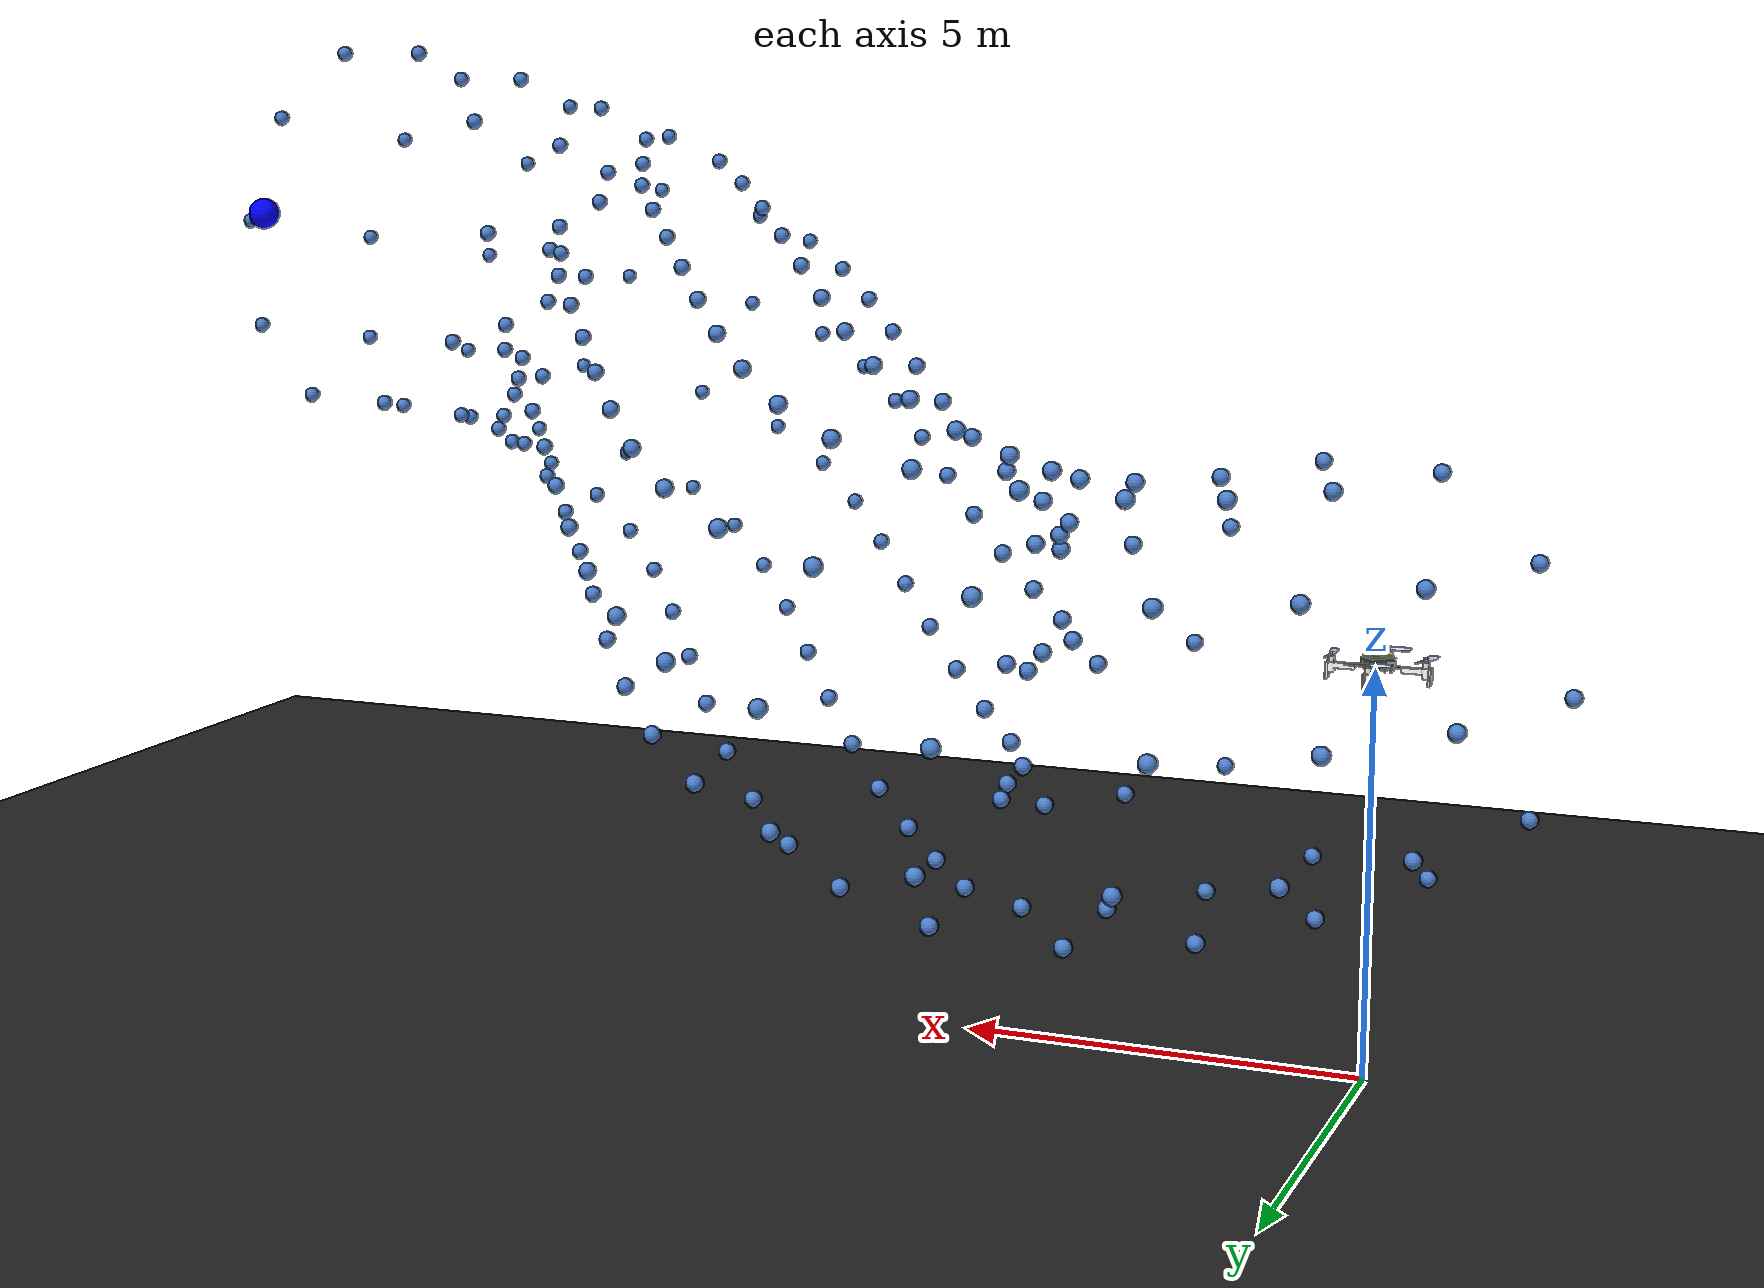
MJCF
<?xml version="1.0" ?>
<mujoco model="CF2 scene">

  <include file="cf2.xml"/>

  <statistic center="0 0 0.1" extent="0.2" meansize=".05"/>

  <visual>

    <rgba haze="0.15 0.25 0.35 0"/>

    <global azimuth="-20" elevation="-20" ellipsoidinertia="true"/>

    <map zfar="1000"/>

  </visual>

  <asset>

    <texture type="skybox" builtin="gradient" rgb1="0.3 0.5 0.7" rgb2="0 0 0" width="512" height="3072"/>

    <texture type="2d" name="groundplane" builtin="checker" mark="edge" rgb1="0.1 0.1 0.1" rgb2="0.2 0.2 0.2" markrgb="0.8 0.8 0.8" width="300" height="300"/>

    <material name="groundplane" texture="groundplane" texuniform="true" texrepeat="5 5" reflectance="0.1"/>

  </asset>

  <worldbody>

    <light diffuse="1 1 1" ambient="1 1 1" pos="0 0 100" dir="0 0 -1" directional="false"/>

    <geom name="floor" size="0 0 0.05" type="plane" material="groundplane"/>

    <site name="x_axis" size="0.005" type="cylinder" fromto="0 0 0 1 0 0" rgba="1 0 0 1"/>

    <site name="y_axis" size="0.005" type="cylinder" fromto="0 0 0 0 1 0" rgba="0 1 0 1"/>

    <site name="z_axis" size="0.005" type="cylinder" fromto="0 0 0 0 0 1" rgba="0 0 1 1"/>

    <site name="target" size="0.2" type="sphere" pos="15 0 10" rgba="0 0 1 1"/>

    <camera name="cam_aux" pos="-3.429 -18.876 13.649" xyaxes="0.874 -0.486 -0.000 0.179 0.321 0.930"/>

    <body name="sphere_0_0" pos="-2.37909 0.76807 5.00000">
      <geom type="sphere" size="0.1" rgba="0.3 0.5 0.8 1"/>
    </body>
    <body name="sphere_0_1" pos="-1.92556 0.61880 6.46946">
      <geom type="sphere" size="0.1" rgba="0.3 0.5 0.8 1"/>
    </body>
    <body name="sphere_0_2" pos="-0.73653 0.23316 7.37764">
      <geom type="sphere" size="0.1" rgba="0.3 0.5 0.8 1"/>
    </body>
    <body name="sphere_0_3" pos="0.73383 -0.24153 7.37764">
      <geom type="sphere" size="0.1" rgba="0.3 0.5 0.8 1"/>
    </body>
    <body name="sphere_0_4" pos="1.92389 -0.62397 6.46946">
      <geom type="sphere" size="0.1" rgba="0.3 0.5 0.8 1"/>
    </body>
    <body name="sphere_0_5" pos="2.37909 -0.76807 5.00000">
      <geom type="sphere" size="0.1" rgba="0.3 0.5 0.8 1"/>
    </body>
    <body name="sphere_0_6" pos="1.92556 -0.61880 3.53054">
      <geom type="sphere" size="0.1" rgba="0.3 0.5 0.8 1"/>
    </body>
    <body name="sphere_0_7" pos="0.73653 -0.23316 2.62236">
      <geom type="sphere" size="0.1" rgba="0.3 0.5 0.8 1"/>
    </body>
    <body name="sphere_0_8" pos="-0.73383 0.24153 2.62236">
      <geom type="sphere" size="0.1" rgba="0.3 0.5 0.8 1"/>
    </body>
    <body name="sphere_0_9" pos="-1.92389 0.62397 3.53054">
      <geom type="sphere" size="0.1" rgba="0.3 0.5 0.8 1"/>
    </body>
    <body name="sphere_1_0" pos="-1.51770 3.08912 5.02244">
      <geom type="sphere" size="0.1" rgba="0.3 0.5 0.8 1"/>
    </body>
    <body name="sphere_1_1" pos="-1.09582 2.86291 6.49150">
      <geom type="sphere" size="0.1" rgba="0.3 0.5 0.8 1"/>
    </body>
    <body name="sphere_1_2" pos="0.03677 2.33357 7.39943">
      <geom type="sphere" size="0.1" rgba="0.3 0.5 0.8 1"/>
    </body>
    <body name="sphere_1_3" pos="1.44745 1.70329 7.39943">
      <geom type="sphere" size="0.1" rgba="0.3 0.5 0.8 1"/>
    </body>
    <body name="sphere_1_4" pos="2.59740 1.21281 6.49150">
      <geom type="sphere" size="0.1" rgba="0.3 0.5 0.8 1"/>
    </body>
    <body name="sphere_1_5" pos="3.04738 1.04948 5.02244">
      <geom type="sphere" size="0.1" rgba="0.3 0.5 0.8 1"/>
    </body>
    <body name="sphere_1_6" pos="2.62550 1.27569 3.55338">
      <geom type="sphere" size="0.1" rgba="0.3 0.5 0.8 1"/>
    </body>
    <body name="sphere_1_7" pos="1.49291 1.80503 2.64545">
      <geom type="sphere" size="0.1" rgba="0.3 0.5 0.8 1"/>
    </body>
    <body name="sphere_1_8" pos="0.08223 2.43532 2.64545">
      <geom type="sphere" size="0.1" rgba="0.3 0.5 0.8 1"/>
    </body>
    <body name="sphere_1_9" pos="-1.06772 2.92579 3.55338">
      <geom type="sphere" size="0.1" rgba="0.3 0.5 0.8 1"/>
    </body>
    <body name="sphere_2_0" pos="-0.49600 4.92519 5.08770">
      <geom type="sphere" size="0.1" rgba="0.3 0.5 0.8 1"/>
    </body>
    <body name="sphere_2_1" pos="-0.16034 4.57320 6.55424">
      <geom type="sphere" size="0.1" rgba="0.3 0.5 0.8 1"/>
    </body>
    <body name="sphere_2_2" pos="0.82581 3.80294 7.46060">
      <geom type="sphere" size="0.1" rgba="0.3 0.5 0.8 1"/>
    </body>
    <body name="sphere_2_3" pos="2.08578 2.90864 7.46060">
      <geom type="sphere" size="0.1" rgba="0.3 0.5 0.8 1"/>
    </body>
    <body name="sphere_2_4" pos="3.13830 2.23189 6.55424">
      <geom type="sphere" size="0.1" rgba="0.3 0.5 0.8 1"/>
    </body>
    <body name="sphere_2_5" pos="3.58134 2.03118 5.08770">
      <geom type="sphere" size="0.1" rgba="0.3 0.5 0.8 1"/>
    </body>
    <body name="sphere_2_6" pos="3.24568 2.38317 3.62117">
      <geom type="sphere" size="0.1" rgba="0.3 0.5 0.8 1"/>
    </body>
    <body name="sphere_2_7" pos="2.25952 3.15343 2.71481">
      <geom type="sphere" size="0.1" rgba="0.3 0.5 0.8 1"/>
    </body>
    <body name="sphere_2_8" pos="0.99956 4.04773 2.71481">
      <geom type="sphere" size="0.1" rgba="0.3 0.5 0.8 1"/>
    </body>
    <body name="sphere_2_9" pos="-0.05296 4.72448 3.62117">
      <geom type="sphere" size="0.1" rgba="0.3 0.5 0.8 1"/>
    </body>
    <body name="sphere_3_0" pos="0.89808 6.34934 5.19270">
      <geom type="sphere" size="0.1" rgba="0.3 0.5 0.8 1"/>
    </body>
    <body name="sphere_3_1" pos="1.01899 5.85123 6.65028">
      <geom type="sphere" size="0.1" rgba="0.3 0.5 0.8 1"/>
    </body>
    <body name="sphere_3_2" pos="1.64111 4.76093 7.55112">
      <geom type="sphere" size="0.1" rgba="0.3 0.5 0.8 1"/>
    </body>
    <body name="sphere_3_3" pos="2.52681 3.49490 7.55112">
      <geom type="sphere" size="0.1" rgba="0.3 0.5 0.8 1"/>
    </body>
    <body name="sphere_3_4" pos="3.33777 2.53672 6.65028">
      <geom type="sphere" size="0.1" rgba="0.3 0.5 0.8 1"/>
    </body>
    <body name="sphere_3_5" pos="3.76425 2.25238 5.19270">
      <geom type="sphere" size="0.1" rgba="0.3 0.5 0.8 1"/>
    </body>
    <body name="sphere_3_6" pos="3.64333 2.75049 3.73511">
      <geom type="sphere" size="0.1" rgba="0.3 0.5 0.8 1"/>
    </body>
    <body name="sphere_3_7" pos="3.02121 3.84079 2.83428">
      <geom type="sphere" size="0.1" rgba="0.3 0.5 0.8 1"/>
    </body>
    <body name="sphere_3_8" pos="2.13552 5.10682 2.83428">
      <geom type="sphere" size="0.1" rgba="0.3 0.5 0.8 1"/>
    </body>
    <body name="sphere_3_9" pos="1.32455 6.06500 3.73511">
      <geom type="sphere" size="0.1" rgba="0.3 0.5 0.8 1"/>
    </body>
    <body name="sphere_4_0" pos="2.87965 7.09916 5.33433">
      <geom type="sphere" size="0.1" rgba="0.3 0.5 0.8 1"/>
    </body>
    <body name="sphere_4_1" pos="2.64365 6.59577 6.77592">
      <geom type="sphere" size="0.1" rgba="0.3 0.5 0.8 1"/>
    </body>
    <body name="sphere_4_2" pos="2.59266 5.33446 7.66688">
      <geom type="sphere" size="0.1" rgba="0.3 0.5 0.8 1"/>
    </body>
    <body name="sphere_4_3" pos="2.74615 3.79702 7.66688">
      <geom type="sphere" size="0.1" rgba="0.3 0.5 0.8 1"/>
    </body>
    <body name="sphere_4_4" pos="3.04550 2.57069 6.77592">
      <geom type="sphere" size="0.1" rgba="0.3 0.5 0.8 1"/>
    </body>
    <body name="sphere_4_5" pos="3.37636 2.12389 5.33433">
      <geom type="sphere" size="0.1" rgba="0.3 0.5 0.8 1"/>
    </body>
    <body name="sphere_4_6" pos="3.61236 2.62729 3.89274">
      <geom type="sphere" size="0.1" rgba="0.3 0.5 0.8 1"/>
    </body>
    <body name="sphere_4_7" pos="3.66335 3.88859 3.00178">
      <geom type="sphere" size="0.1" rgba="0.3 0.5 0.8 1"/>
    </body>
    <body name="sphere_4_8" pos="3.50986 5.42603 3.00178">
      <geom type="sphere" size="0.1" rgba="0.3 0.5 0.8 1"/>
    </body>
    <body name="sphere_4_9" pos="3.21051 6.65236 3.89274">
      <geom type="sphere" size="0.1" rgba="0.3 0.5 0.8 1"/>
    </body>
    <body name="sphere_5_0" pos="4.85629 6.80680 5.50951">
      <geom type="sphere" size="0.1" rgba="0.3 0.5 0.8 1"/>
    </body>
    <body name="sphere_5_1" pos="4.38591 6.48027 6.94457">
      <geom type="sphere" size="0.1" rgba="0.3 0.5 0.8 1"/>
    </body>
    <body name="sphere_5_2" pos="3.74171 5.39138 7.83149">
      <geom type="sphere" size="0.1" rgba="0.3 0.5 0.8 1"/>
    </body>
    <body name="sphere_5_3" pos="3.16977 3.95605 7.83149">
      <geom type="sphere" size="0.1" rgba="0.3 0.5 0.8 1"/>
    </body>
    <body name="sphere_5_4" pos="2.88855 2.72253 6.94457">
      <geom type="sphere" size="0.1" rgba="0.3 0.5 0.8 1"/>
    </body>
    <body name="sphere_5_5" pos="3.00546 2.16198 5.50951">
      <geom type="sphere" size="0.1" rgba="0.3 0.5 0.8 1"/>
    </body>
    <body name="sphere_5_6" pos="3.47585 2.48851 4.07445">
      <geom type="sphere" size="0.1" rgba="0.3 0.5 0.8 1"/>
    </body>
    <body name="sphere_5_7" pos="4.12004 3.57740 3.18753">
      <geom type="sphere" size="0.1" rgba="0.3 0.5 0.8 1"/>
    </body>
    <body name="sphere_5_8" pos="4.69198 5.01273 3.18753">
      <geom type="sphere" size="0.1" rgba="0.3 0.5 0.8 1"/>
    </body>
    <body name="sphere_5_9" pos="4.97320 6.24625 4.07445">
      <geom type="sphere" size="0.1" rgba="0.3 0.5 0.8 1"/>
    </body>
    <body name="sphere_6_0" pos="6.30094 5.94443 5.71514">
      <geom type="sphere" size="0.1" rgba="0.3 0.5 0.8 1"/>
    </body>
    <body name="sphere_6_1" pos="5.76415 5.76277 7.15255">
      <geom type="sphere" size="0.1" rgba="0.3 0.5 0.8 1"/>
    </body>
    <body name="sphere_6_2" pos="4.83519 4.90537 8.04091">
      <geom type="sphere" size="0.1" rgba="0.3 0.5 0.8 1"/>
    </body>
    <body name="sphere_6_3" pos="3.86890 3.69973 8.04091">
      <geom type="sphere" size="0.1" rgba="0.3 0.5 0.8 1"/>
    </body>
    <body name="sphere_6_4" pos="3.23437 2.60635 7.15255">
      <geom type="sphere" size="0.1" rgba="0.3 0.5 0.8 1"/>
    </body>
    <body name="sphere_6_5" pos="3.17397 2.04288 5.71514">
      <geom type="sphere" size="0.1" rgba="0.3 0.5 0.8 1"/>
    </body>
    <body name="sphere_6_6" pos="3.71077 2.22454 4.27773">
      <geom type="sphere" size="0.1" rgba="0.3 0.5 0.8 1"/>
    </body>
    <body name="sphere_6_7" pos="4.63972 3.08194 3.38937">
      <geom type="sphere" size="0.1" rgba="0.3 0.5 0.8 1"/>
    </body>
    <body name="sphere_6_8" pos="5.60601 4.28758 3.38937">
      <geom type="sphere" size="0.1" rgba="0.3 0.5 0.8 1"/>
    </body>
    <body name="sphere_6_9" pos="6.24054 5.38096 4.27773">
      <geom type="sphere" size="0.1" rgba="0.3 0.5 0.8 1"/>
    </body>
    <body name="sphere_7_0" pos="7.40547 4.88393 5.94814">
      <geom type="sphere" size="0.1" rgba="0.3 0.5 0.8 1"/>
    </body>
    <body name="sphere_7_1" pos="6.85477 4.78256 7.38819">
      <geom type="sphere" size="0.1" rgba="0.3 0.5 0.8 1"/>
    </body>
    <body name="sphere_7_2" pos="5.80395 4.08188 8.27818">
      <geom type="sphere" size="0.1" rgba="0.3 0.5 0.8 1"/>
    </body>
    <body name="sphere_7_3" pos="4.65438 3.04951 8.27818">
      <geom type="sphere" size="0.1" rgba="0.3 0.5 0.8 1"/>
    </body>
    <body name="sphere_7_4" pos="3.84516 2.07980 7.38819">
      <geom type="sphere" size="0.1" rgba="0.3 0.5 0.8 1"/>
    </body>
    <body name="sphere_7_5" pos="3.68539 1.54312 5.94814">
      <geom type="sphere" size="0.1" rgba="0.3 0.5 0.8 1"/>
    </body>
    <body name="sphere_7_6" pos="4.23609 1.64449 4.50809">
      <geom type="sphere" size="0.1" rgba="0.3 0.5 0.8 1"/>
    </body>
    <body name="sphere_7_7" pos="5.28691 2.34517 3.61809">
      <geom type="sphere" size="0.1" rgba="0.3 0.5 0.8 1"/>
    </body>
    <body name="sphere_7_8" pos="6.43648 3.37753 3.61809">
      <geom type="sphere" size="0.1" rgba="0.3 0.5 0.8 1"/>
    </body>
    <body name="sphere_7_9" pos="7.24570 4.34725 4.50809">
      <geom type="sphere" size="0.1" rgba="0.3 0.5 0.8 1"/>
    </body>
    <body name="sphere_8_0" pos="8.35468 3.71526 6.20540">
      <geom type="sphere" size="0.1" rgba="0.3 0.5 0.8 1"/>
    </body>
    <body name="sphere_8_1" pos="7.80020 3.65951 7.64649">
      <geom type="sphere" size="0.1" rgba="0.3 0.5 0.8 1"/>
    </body>
    <body name="sphere_8_2" pos="6.69274 3.05323 8.53713">
      <geom type="sphere" size="0.1" rgba="0.3 0.5 0.8 1"/>
    </body>
    <body name="sphere_8_3" pos="5.45531 2.12800 8.53713">
      <geom type="sphere" size="0.1" rgba="0.3 0.5 0.8 1"/>
    </body>
    <body name="sphere_8_4" pos="4.56056 1.23722 7.64649">
      <geom type="sphere" size="0.1" rgba="0.3 0.5 0.8 1"/>
    </body>
    <body name="sphere_8_5" pos="4.35027 0.72115 6.20540">
      <geom type="sphere" size="0.1" rgba="0.3 0.5 0.8 1"/>
    </body>
    <body name="sphere_8_6" pos="4.90475 0.77690 4.76432">
      <geom type="sphere" size="0.1" rgba="0.3 0.5 0.8 1"/>
    </body>
    <body name="sphere_8_7" pos="6.01221 1.38318 3.87367">
      <geom type="sphere" size="0.1" rgba="0.3 0.5 0.8 1"/>
    </body>
    <body name="sphere_8_8" pos="7.24964 2.30841 3.87367">
      <geom type="sphere" size="0.1" rgba="0.3 0.5 0.8 1"/>
    </body>
    <body name="sphere_8_9" pos="8.14439 3.19918 4.76432">
      <geom type="sphere" size="0.1" rgba="0.3 0.5 0.8 1"/>
    </body>
    <body name="sphere_9_0" pos="9.22528 2.48517 6.48385">
      <geom type="sphere" size="0.1" rgba="0.3 0.5 0.8 1"/>
    </body>
    <body name="sphere_9_1" pos="8.66705 2.45763 7.92430">
      <geom type="sphere" size="0.1" rgba="0.3 0.5 0.8 1"/>
    </body>
    <body name="sphere_9_2" pos="7.53174 1.90461 8.81455">
      <geom type="sphere" size="0.1" rgba="0.3 0.5 0.8 1"/>
    </body>
    <body name="sphere_9_3" pos="6.25303 1.03734 8.81455">
      <geom type="sphere" size="0.1" rgba="0.3 0.5 0.8 1"/>
    </body>
    <body name="sphere_9_4" pos="5.31932 0.18708 7.92430">
      <geom type="sphere" size="0.1" rgba="0.3 0.5 0.8 1"/>
    </body>
    <body name="sphere_9_5" pos="5.08726 -0.32139 6.48385">
      <geom type="sphere" size="0.1" rgba="0.3 0.5 0.8 1"/>
    </body>
    <body name="sphere_9_6" pos="5.64550 -0.29385 5.04340">
      <geom type="sphere" size="0.1" rgba="0.3 0.5 0.8 1"/>
    </body>
    <body name="sphere_9_7" pos="6.78080 0.25918 4.15315">
      <geom type="sphere" size="0.1" rgba="0.3 0.5 0.8 1"/>
    </body>
    <body name="sphere_9_8" pos="8.05952 1.12645 4.15315">
      <geom type="sphere" size="0.1" rgba="0.3 0.5 0.8 1"/>
    </body>
    <body name="sphere_9_9" pos="8.99323 1.97671 5.04340">
      <geom type="sphere" size="0.1" rgba="0.3 0.5 0.8 1"/>
    </body>
    <body name="sphere_10_0" pos="10.04480 1.25017 6.78038">
      <geom type="sphere" size="0.1" rgba="0.3 0.5 0.8 1"/>
    </body>
    <body name="sphere_10_1" pos="9.47977 1.24101 8.21841">
      <geom type="sphere" size="0.1" rgba="0.3 0.5 0.8 1"/>
    </body>
    <body name="sphere_10_2" pos="8.33214 0.71154 9.10717">
      <geom type="sphere" size="0.1" rgba="0.3 0.5 0.8 1"/>
    </body>
    <body name="sphere_10_3" pos="7.04027 -0.13602 9.10717">
      <geom type="sphere" size="0.1" rgba="0.3 0.5 0.8 1"/>
    </body>
    <body name="sphere_10_4" pos="6.09760 -0.97791 8.21841">
      <geom type="sphere" size="0.1" rgba="0.3 0.5 0.8 1"/>
    </body>
    <body name="sphere_10_5" pos="5.86421 -1.49257 6.78038">
      <geom type="sphere" size="0.1" rgba="0.3 0.5 0.8 1"/>
    </body>
    <body name="sphere_10_6" pos="6.42924 -1.48341 5.34234">
      <geom type="sphere" size="0.1" rgba="0.3 0.5 0.8 1"/>
    </body>
    <body name="sphere_10_7" pos="7.57687 -0.95394 4.45359">
      <geom type="sphere" size="0.1" rgba="0.3 0.5 0.8 1"/>
    </body>
    <body name="sphere_10_8" pos="8.86875 -0.10638 4.45359">
      <geom type="sphere" size="0.1" rgba="0.3 0.5 0.8 1"/>
    </body>
    <body name="sphere_10_9" pos="9.81141 0.73551 5.34234">
      <geom type="sphere" size="0.1" rgba="0.3 0.5 0.8 1"/>
    </body>
    <body name="sphere_11_0" pos="10.81856 0.07946 7.09191">
      <geom type="sphere" size="0.1" rgba="0.3 0.5 0.8 1"/>
    </body>
    <body name="sphere_11_1" pos="10.24155 0.08155 8.52520">
      <geom type="sphere" size="0.1" rgba="0.3 0.5 0.8 1"/>
    </body>
    <body name="sphere_11_2" pos="9.09285 -0.45051 9.41103">
      <geom type="sphere" size="0.1" rgba="0.3 0.5 0.8 1"/>
    </body>
    <body name="sphere_11_3" pos="7.81123 -1.31349 9.41103">
      <geom type="sphere" size="0.1" rgba="0.3 0.5 0.8 1"/>
    </body>
    <body name="sphere_11_4" pos="6.88622 -2.17776 8.52520">
      <geom type="sphere" size="0.1" rgba="0.3 0.5 0.8 1"/>
    </body>
    <body name="sphere_11_5" pos="6.67115 -2.71320 7.09191">
      <geom type="sphere" size="0.1" rgba="0.3 0.5 0.8 1"/>
    </body>
    <body name="sphere_11_6" pos="7.24816 -2.71529 5.65861">
      <geom type="sphere" size="0.1" rgba="0.3 0.5 0.8 1"/>
    </body>
    <body name="sphere_11_7" pos="8.39686 -2.18323 4.77279">
      <geom type="sphere" size="0.1" rgba="0.3 0.5 0.8 1"/>
    </body>
    <body name="sphere_11_8" pos="9.67849 -1.32025 4.77279">
      <geom type="sphere" size="0.1" rgba="0.3 0.5 0.8 1"/>
    </body>
    <body name="sphere_11_9" pos="10.60349 -0.45598 5.65861">
      <geom type="sphere" size="0.1" rgba="0.3 0.5 0.8 1"/>
    </body>
    <body name="sphere_12_0" pos="11.53577 -0.94539 7.41534">
      <geom type="sphere" size="0.1" rgba="0.3 0.5 0.8 1"/>
    </body>
    <body name="sphere_12_1" pos="10.93839 -0.94031 8.84026">
      <geom type="sphere" size="0.1" rgba="0.3 0.5 0.8 1"/>
    </body>
    <body name="sphere_12_2" pos="9.80115 -1.50459 9.72091">
      <geom type="sphere" size="0.1" rgba="0.3 0.5 0.8 1"/>
    </body>
    <body name="sphere_12_3" pos="8.55842 -2.42270 9.72091">
      <geom type="sphere" size="0.1" rgba="0.3 0.5 0.8 1"/>
    </body>
    <body name="sphere_12_4" pos="7.68490 -3.34395 8.84026">
      <geom type="sphere" size="0.1" rgba="0.3 0.5 0.8 1"/>
    </body>
    <body name="sphere_12_5" pos="7.51423 -3.91645 7.41534">
      <geom type="sphere" size="0.1" rgba="0.3 0.5 0.8 1"/>
    </body>
    <body name="sphere_12_6" pos="8.11161 -3.92153 5.99042">
      <geom type="sphere" size="0.1" rgba="0.3 0.5 0.8 1"/>
    </body>
    <body name="sphere_12_7" pos="9.24886 -3.35725 5.10977">
      <geom type="sphere" size="0.1" rgba="0.3 0.5 0.8 1"/>
    </body>
    <body name="sphere_12_8" pos="10.49158 -2.43914 5.10977">
      <geom type="sphere" size="0.1" rgba="0.3 0.5 0.8 1"/>
    </body>
    <body name="sphere_12_9" pos="11.36510 -1.51789 5.99042">
      <geom type="sphere" size="0.1" rgba="0.3 0.5 0.8 1"/>
    </body>
    <body name="sphere_13_0" pos="12.16060 -1.72761 7.74758">
      <geom type="sphere" size="0.1" rgba="0.3 0.5 0.8 1"/>
    </body>
    <body name="sphere_13_1" pos="11.52902 -1.73596 9.15766">
      <geom type="sphere" size="0.1" rgba="0.3 0.5 0.8 1"/>
    </body>
    <body name="sphere_13_2" pos="10.42519 -2.37577 10.02914">
      <geom type="sphere" size="0.1" rgba="0.3 0.5 0.8 1"/>
    </body>
    <body name="sphere_13_3" pos="9.27071 -3.40265 10.02914">
      <geom type="sphere" size="0.1" rgba="0.3 0.5 0.8 1"/>
    </body>
    <body name="sphere_13_4" pos="8.50658 -4.42437 9.15766">
      <geom type="sphere" size="0.1" rgba="0.3 0.5 0.8 1"/>
    </body>
    <body name="sphere_13_5" pos="8.42465 -5.05067 7.74758">
      <geom type="sphere" size="0.1" rgba="0.3 0.5 0.8 1"/>
    </body>
    <body name="sphere_13_6" pos="9.05623 -5.04232 6.33750">
      <geom type="sphere" size="0.1" rgba="0.3 0.5 0.8 1"/>
    </body>
    <body name="sphere_13_7" pos="10.16007 -4.40251 5.46602">
      <geom type="sphere" size="0.1" rgba="0.3 0.5 0.8 1"/>
    </body>
    <body name="sphere_13_8" pos="11.31454 -3.37563 5.46602">
      <geom type="sphere" size="0.1" rgba="0.3 0.5 0.8 1"/>
    </body>
    <body name="sphere_13_9" pos="12.07867 -2.35391 6.33750">
      <geom type="sphere" size="0.1" rgba="0.3 0.5 0.8 1"/>
    </body>
    <body name="sphere_14_0" pos="12.59472 -2.15528 8.08554">
      <geom type="sphere" size="0.1" rgba="0.3 0.5 0.8 1"/>
    </body>
    <body name="sphere_14_1" pos="11.90998 -2.22295 9.46896">
      <geom type="sphere" size="0.1" rgba="0.3 0.5 0.8 1"/>
    </body>
    <body name="sphere_14_2" pos="10.89501 -3.01421 10.32396">
      <geom type="sphere" size="0.1" rgba="0.3 0.5 0.8 1"/>
    </body>
    <body name="sphere_14_3" pos="9.93749 -4.22683 10.32396">
      <geom type="sphere" size="0.1" rgba="0.3 0.5 0.8 1"/>
    </body>
    <body name="sphere_14_4" pos="9.40315 -5.39762 9.46896">
      <geom type="sphere" size="0.1" rgba="0.3 0.5 0.8 1"/>
    </body>
    <body name="sphere_14_5" pos="9.49610 -6.07938 8.08554">
      <geom type="sphere" size="0.1" rgba="0.3 0.5 0.8 1"/>
    </body>
    <body name="sphere_14_6" pos="10.18084 -6.01171 6.70212">
      <geom type="sphere" size="0.1" rgba="0.3 0.5 0.8 1"/>
    </body>
    <body name="sphere_14_7" pos="11.19581 -5.22044 5.84713">
      <geom type="sphere" size="0.1" rgba="0.3 0.5 0.8 1"/>
    </body>
    <body name="sphere_14_8" pos="12.15333 -4.00783 5.84713">
      <geom type="sphere" size="0.1" rgba="0.3 0.5 0.8 1"/>
    </body>
    <body name="sphere_14_9" pos="12.68767 -2.83704 6.70212">
      <geom type="sphere" size="0.1" rgba="0.3 0.5 0.8 1"/>
    </body>
    <body name="sphere_15_0" pos="12.58485 -2.17403 8.42613">
      <geom type="sphere" size="0.1" rgba="0.3 0.5 0.8 1"/>
    </body>
    <body name="sphere_15_1" pos="11.86625 -2.43426 9.76896">
      <geom type="sphere" size="0.1" rgba="0.3 0.5 0.8 1"/>
    </body>
    <body name="sphere_15_2" pos="11.11511 -3.49930 10.59888">
      <geom type="sphere" size="0.1" rgba="0.3 0.5 0.8 1"/>
    </body>
    <body name="sphere_15_3" pos="10.61833 -4.96234 10.59888">
      <geom type="sphere" size="0.1" rgba="0.3 0.5 0.8 1"/>
    </body>
    <body name="sphere_15_4" pos="10.56566 -6.26455 9.76896">
      <geom type="sphere" size="0.1" rgba="0.3 0.5 0.8 1"/>
    </body>
    <body name="sphere_15_5" pos="10.97722 -6.90853 8.42613">
      <geom type="sphere" size="0.1" rgba="0.3 0.5 0.8 1"/>
    </body>
    <body name="sphere_15_6" pos="11.69581 -6.64830 7.08330">
      <geom type="sphere" size="0.1" rgba="0.3 0.5 0.8 1"/>
    </body>
    <body name="sphere_15_7" pos="12.44696 -5.58326 6.25339">
      <geom type="sphere" size="0.1" rgba="0.3 0.5 0.8 1"/>
    </body>
    <body name="sphere_15_8" pos="12.94374 -4.12022 6.25339">
      <geom type="sphere" size="0.1" rgba="0.3 0.5 0.8 1"/>
    </body>
    <body name="sphere_15_9" pos="12.99641 -2.81801 7.08330">
      <geom type="sphere" size="0.1" rgba="0.3 0.5 0.8 1"/>
    </body>
    <body name="sphere_16_0" pos="11.91508 -2.15550 8.76626">
      <geom type="sphere" size="0.1" rgba="0.3 0.5 0.8 1"/>
    </body>
    <body name="sphere_16_1" pos="11.42155 -2.76461 10.09769">
      <geom type="sphere" size="0.1" rgba="0.3 0.5 0.8 1"/>
    </body>
    <body name="sphere_16_2" pos="11.33887 -4.06974 10.92056">
      <geom type="sphere" size="0.1" rgba="0.3 0.5 0.8 1"/>
    </body>
    <body name="sphere_16_3" pos="11.69863 -5.57236 10.92056">
      <geom type="sphere" size="0.1" rgba="0.3 0.5 0.8 1"/>
    </body>
    <body name="sphere_16_4" pos="12.36340 -6.69852 10.09769">
      <geom type="sphere" size="0.1" rgba="0.3 0.5 0.8 1"/>
    </body>
    <body name="sphere_16_5" pos="13.07927 -7.01808 8.76626">
      <geom type="sphere" size="0.1" rgba="0.3 0.5 0.8 1"/>
    </body>
    <body name="sphere_16_6" pos="13.57280 -6.40897 7.43483">
      <geom type="sphere" size="0.1" rgba="0.3 0.5 0.8 1"/>
    </body>
    <body name="sphere_16_7" pos="13.65548 -5.10385 6.61197">
      <geom type="sphere" size="0.1" rgba="0.3 0.5 0.8 1"/>
    </body>
    <body name="sphere_16_8" pos="13.29573 -3.60123 6.61197">
      <geom type="sphere" size="0.1" rgba="0.3 0.5 0.8 1"/>
    </body>
    <body name="sphere_16_9" pos="12.63096 -2.47506 7.43483">
      <geom type="sphere" size="0.1" rgba="0.3 0.5 0.8 1"/>
    </body>
    <body name="sphere_17_0" pos="11.45564 -2.38058 9.10283">
      <geom type="sphere" size="0.1" rgba="0.3 0.5 0.8 1"/>
    </body>
    <body name="sphere_17_1" pos="11.43621 -3.06280 10.48901">
      <geom type="sphere" size="0.1" rgba="0.3 0.5 0.8 1"/>
    </body>
    <body name="sphere_17_2" pos="12.08726 -4.17162 11.34572">
      <geom type="sphere" size="0.1" rgba="0.3 0.5 0.8 1"/>
    </body>
    <body name="sphere_17_3" pos="13.16010 -5.28351 11.34572">
      <geom type="sphere" size="0.1" rgba="0.3 0.5 0.8 1"/>
    </body>
    <body name="sphere_17_4" pos="14.24494 -5.97377 10.48901">
      <geom type="sphere" size="0.1" rgba="0.3 0.5 0.8 1"/>
    </body>
    <body name="sphere_17_5" pos="14.92742 -5.97874 9.10283">
      <geom type="sphere" size="0.1" rgba="0.3 0.5 0.8 1"/>
    </body>
    <body name="sphere_17_6" pos="14.94684 -5.29652 7.71666">
      <geom type="sphere" size="0.1" rgba="0.3 0.5 0.8 1"/>
    </body>
    <body name="sphere_17_7" pos="14.29580 -4.18770 6.85995">
      <geom type="sphere" size="0.1" rgba="0.3 0.5 0.8 1"/>
    </body>
    <body name="sphere_17_8" pos="13.22296 -3.07581 6.85995">
      <geom type="sphere" size="0.1" rgba="0.3 0.5 0.8 1"/>
    </body>
    <body name="sphere_17_9" pos="12.13811 -2.38555 7.71666">
      <geom type="sphere" size="0.1" rgba="0.3 0.5 0.8 1"/>
    </body>
    <body name="sphere_18_0" pos="11.65986 -2.06177 9.43276">
      <geom type="sphere" size="0.1" rgba="0.3 0.5 0.8 1"/>
    </body>
    <body name="sphere_18_1" pos="11.92150 -2.58338 10.86340">
      <geom type="sphere" size="0.1" rgba="0.3 0.5 0.8 1"/>
    </body>
    <body name="sphere_18_2" pos="12.92425 -3.35797 11.74759">
      <geom type="sphere" size="0.1" rgba="0.3 0.5 0.8 1"/>
    </body>
    <body name="sphere_18_3" pos="14.28510 -4.08967 11.74759">
      <geom type="sphere" size="0.1" rgba="0.3 0.5 0.8 1"/>
    </body>
    <body name="sphere_18_4" pos="15.48424 -4.49899 10.86340">
      <geom type="sphere" size="0.1" rgba="0.3 0.5 0.8 1"/>
    </body>
    <body name="sphere_18_5" pos="16.06365 -4.42959 9.43276">
      <geom type="sphere" size="0.1" rgba="0.3 0.5 0.8 1"/>
    </body>
    <body name="sphere_18_6" pos="15.80202 -3.90798 8.00211">
      <geom type="sphere" size="0.1" rgba="0.3 0.5 0.8 1"/>
    </body>
    <body name="sphere_18_7" pos="14.79927 -3.13339 7.11792">
      <geom type="sphere" size="0.1" rgba="0.3 0.5 0.8 1"/>
    </body>
    <body name="sphere_18_8" pos="13.43842 -2.40169 7.11792">
      <geom type="sphere" size="0.1" rgba="0.3 0.5 0.8 1"/>
    </body>
    <body name="sphere_18_9" pos="12.23927 -1.99237 8.00211">
      <geom type="sphere" size="0.1" rgba="0.3 0.5 0.8 1"/>
    </body>
    <body name="sphere_19_0" pos="12.13751 -0.90917 9.75294">
      <geom type="sphere" size="0.1" rgba="0.3 0.5 0.8 1"/>
    </body>
    <body name="sphere_19_1" pos="12.51535 -1.28211 11.20396">
      <geom type="sphere" size="0.1" rgba="0.3 0.5 0.8 1"/>
    </body>
    <body name="sphere_19_2" pos="13.65338 -1.81874 12.10073">
      <geom type="sphere" size="0.1" rgba="0.3 0.5 0.8 1"/>
    </body>
    <body name="sphere_19_3" pos="15.11691 -2.31408 12.10073">
      <geom type="sphere" size="0.1" rgba="0.3 0.5 0.8 1"/>
    </body>
    <body name="sphere_19_4" pos="16.34693 -2.57893 11.20396">
      <geom type="sphere" size="0.1" rgba="0.3 0.5 0.8 1"/>
    </body>
    <body name="sphere_19_5" pos="16.87360 -2.51212 9.75294">
      <geom type="sphere" size="0.1" rgba="0.3 0.5 0.8 1"/>
    </body>
    <body name="sphere_19_6" pos="16.49576 -2.13918 8.30193">
      <geom type="sphere" size="0.1" rgba="0.3 0.5 0.8 1"/>
    </body>
    <body name="sphere_19_7" pos="15.35773 -1.60256 7.40515">
      <geom type="sphere" size="0.1" rgba="0.3 0.5 0.8 1"/>
    </body>
    <body name="sphere_19_8" pos="13.89420 -1.10722 7.40515">
      <geom type="sphere" size="0.1" rgba="0.3 0.5 0.8 1"/>
    </body>
    <body name="sphere_19_9" pos="12.66418 -0.84237 8.30193">
      <geom type="sphere" size="0.1" rgba="0.3 0.5 0.8 1"/>
    </body>
  </worldbody>

</mujoco>

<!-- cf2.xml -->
<mujoco model="cf2">
  <option integrator="RK4" density="1.225" viscosity="1.8e-5" timestep="0.1"/>

  <compiler inertiafromgeom="false" meshdir="assets" autolimits="true"/>

  <default>
    <default class="cf2">
      <default class="visual">
        <geom group="2" type="mesh" contype="0" conaffinity="0"/>
      </default>
      <default class="collision">
        <geom group="3" type="mesh"/>
      </default>
      <site group="5"/>
    </default>
  </default>

  <asset>
    <material name="polished_plastic" rgba="0.631 0.659 0.678 1"/>
    <material name="polished_gold" rgba="0.969 0.878 0.6 1"/>
    <material name="medium_gloss_plastic" rgba="0.109 0.184 0.0 1"/>
    <material name="propeller_plastic" rgba="0.792 0.820 0.933 1"/>
    <material name="white" rgba="1 1 1 1"/>
    <material name="body_frame_plastic" rgba="0.102 0.102 0.102 1"/>
    <material name="burnished_chrome" rgba="0.898 0.898 0.898 1"/>

    <mesh file="cf2_0.obj"/>
    <mesh file="cf2_1.obj"/>
    <mesh file="cf2_2.obj"/>
    <mesh file="cf2_3.obj"/>
    <mesh file="cf2_4.obj"/>
    <mesh file="cf2_5.obj"/>
    <mesh file="cf2_6.obj"/>
    <mesh file="cf2_collision_0.obj"/>
    <mesh file="cf2_collision_1.obj"/>
    <mesh file="cf2_collision_2.obj"/>
    <mesh file="cf2_collision_3.obj"/>
    <mesh file="cf2_collision_4.obj"/>
    <mesh file="cf2_collision_5.obj"/>
    <mesh file="cf2_collision_6.obj"/>
    <mesh file="cf2_collision_7.obj"/>
    <mesh file="cf2_collision_8.obj"/>
    <mesh file="cf2_collision_9.obj"/>
    <mesh file="cf2_collision_10.obj"/>
    <mesh file="cf2_collision_11.obj"/>
    <mesh file="cf2_collision_12.obj"/>
    <mesh file="cf2_collision_13.obj"/>
    <mesh file="cf2_collision_14.obj"/>
    <mesh file="cf2_collision_15.obj"/>
    <mesh file="cf2_collision_16.obj"/>
    <mesh file="cf2_collision_17.obj"/>
    <mesh file="cf2_collision_18.obj"/>
    <mesh file="cf2_collision_19.obj"/>
    <mesh file="cf2_collision_20.obj"/>
    <mesh file="cf2_collision_21.obj"/>
    <mesh file="cf2_collision_22.obj"/>
    <mesh file="cf2_collision_23.obj"/>
    <mesh file="cf2_collision_24.obj"/>
    <mesh file="cf2_collision_25.obj"/>
    <mesh file="cf2_collision_26.obj"/>
    <mesh file="cf2_collision_27.obj"/>
    <mesh file="cf2_collision_28.obj"/>
    <mesh file="cf2_collision_29.obj"/>
    <mesh file="cf2_collision_30.obj"/>
    <mesh file="cf2_collision_31.obj"/>
  </asset>

  <worldbody>
    <body name="cf2" pos="0 0.0 5.0" childclass="cf2">
      <freejoint/>
      <inertial pos="0 0 0" mass="0.1" diaginertia="1e-2 1e-2 1e-2"/>
      <camera name="track_cf2" pos="-10  0 1" fovy="60" xyaxes="0 -1 0 0 0 1" mode="trackcom"/>
      <geom mesh="cf2_0" material="propeller_plastic" class="visual"/>
      <geom mesh="cf2_1" material="medium_gloss_plastic" class="visual"/>
      <geom mesh="cf2_2" material="polished_gold" class="visual"/>
      <geom mesh="cf2_3" material="polished_plastic" class="visual"/>
      <geom mesh="cf2_4" material="burnished_chrome" class="visual"/>
      <geom mesh="cf2_5" material="body_frame_plastic" class="visual"/>
      <geom mesh="cf2_6" material="white" class="visual"/>
      <geom mesh="cf2_collision_0" class="collision"/>
      <geom mesh="cf2_collision_1" class="collision"/>
      <geom mesh="cf2_collision_2" class="collision"/>
      <geom mesh="cf2_collision_3" class="collision"/>
      <geom mesh="cf2_collision_4" class="collision"/>
      <geom mesh="cf2_collision_5" class="collision"/>
      <geom mesh="cf2_collision_6" class="collision"/>
      <geom mesh="cf2_collision_7" class="collision"/>
      <geom mesh="cf2_collision_8" class="collision"/>
      <geom mesh="cf2_collision_9" class="collision"/>
      <geom mesh="cf2_collision_10" class="collision"/>
      <geom mesh="cf2_collision_11" class="collision"/>
      <geom mesh="cf2_collision_12" class="collision"/>
      <geom mesh="cf2_collision_13" class="collision"/>
      <geom mesh="cf2_collision_14" class="collision"/>
      <geom mesh="cf2_collision_15" class="collision"/>
      <geom mesh="cf2_collision_16" class="collision"/>
      <geom mesh="cf2_collision_17" class="collision"/>
      <geom mesh="cf2_collision_18" class="collision"/>
      <geom mesh="cf2_collision_19" class="collision"/>
      <geom mesh="cf2_collision_20" class="collision"/>
      <geom mesh="cf2_collision_21" class="collision"/>
      <geom mesh="cf2_collision_22" class="collision"/>
      <geom mesh="cf2_collision_23" class="collision"/>
      <geom mesh="cf2_collision_24" class="collision"/>
      <geom mesh="cf2_collision_25" class="collision"/>
      <geom mesh="cf2_collision_26" class="collision"/>
      <geom mesh="cf2_collision_27" class="collision"/>
      <geom mesh="cf2_collision_28" class="collision"/>
      <geom mesh="cf2_collision_29" class="collision"/>
      <geom mesh="cf2_collision_30" class="collision"/>
      <geom mesh="cf2_collision_31" class="collision"/>
      <site name="imu"/>
      <site name="actuation"/>
    </body>
  </worldbody>

  <actuator>
    <motor class="cf2" gear="0 0 1 0 0 0" site="actuation" name="body_thrust"/>
    <motor class="cf2" gear="0 0 0 1 0 0" site="actuation" name="x_moment"/>
    <motor class="cf2" gear="0 0 0 0 1 0" site="actuation" name="y_moment"/>
    <motor class="cf2" gear="0 0 0 0 0 1" site="actuation" name="z_moment"/>
  </actuator>

  <sensor>
    <gyro name="body_gyro" site="imu"/>
    <accelerometer name="body_linacc" site="imu"/>
    <framequat name="body_quat" objtype="site" objname="imu"/>
  </sensor>

  <keyframe>
    <key name="hover" qpos="0 0 0.1 1 0 0 0" ctrl="0.26487 0 0 0"/>
  </keyframe>
</mujoco>
